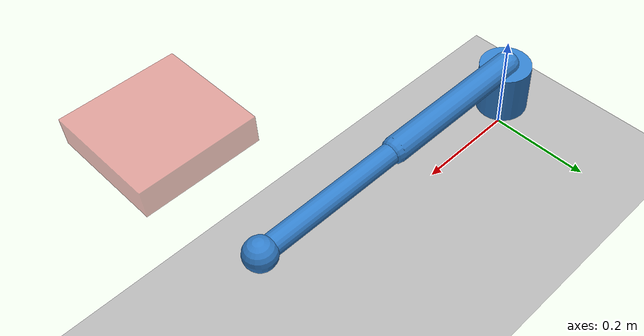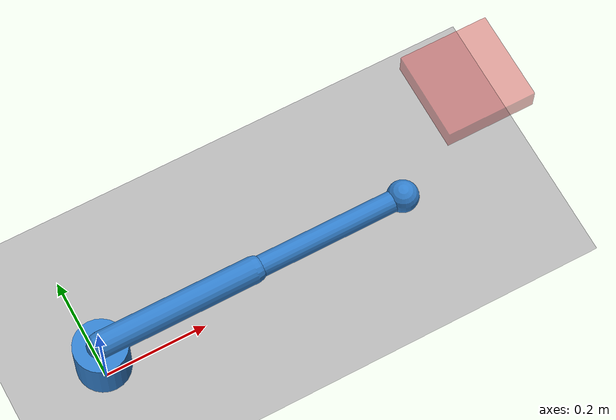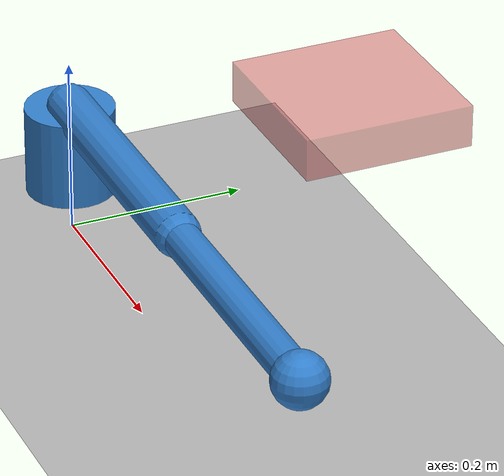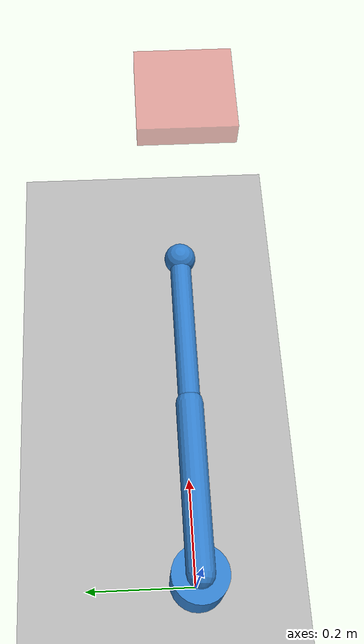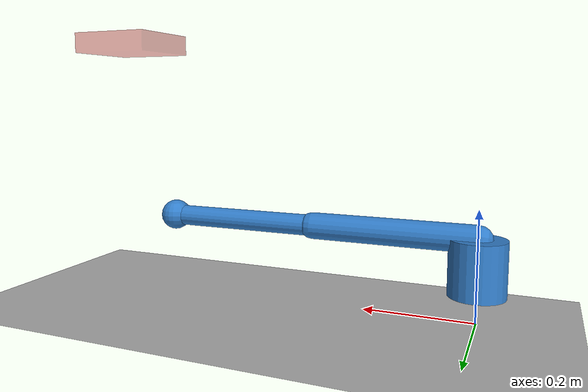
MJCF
<mujoco model="two_dof_arm">
  <option gravity="0 0 -9.81" timestep="0.002" integrator="RK4"/>

  <visual>
    <headlight ambient="0.4 0.4 0.4" diffuse="0.8 0.8 0.8"/>
  </visual>

  <asset>
    <material name="robot_mat"  rgba="0.2 0.5 0.8 1"/>
    <material name="pad_mat"    rgba="0.8 0.3 0.3 0.5"/>
    <material name="floor_mat"  rgba="0.7 0.7 0.7 1"/>
  </asset>

  <worldbody>
    <!-- Floor -->
    <geom name="floor" type="plane" size="2 2 0.1"
          material="floor_mat" condim="3"/>

    <!-- Compliant contact pad (represents human body region — arm) -->
    <body name="contact_pad" pos="0.7 0 0.5">
      <geom name="pad" type="box" size="0.08 0.08 0.02"
            material="pad_mat" solimp="0.99 0.999 0.001" solref="0.01 1"
            condim="3" mass="0"/>
    </body>

    <!-- Robot base -->
    <body name="base" pos="0 0 0.1">
      <geom name="base_geom" type="cylinder" size="0.05 0.05"
            material="robot_mat" mass="2"/>

      <!-- Shoulder joint -->
      <body name="upper_arm" pos="0 0 0.05">
        <joint name="shoulder" type="hinge" axis="0 1 0"
               range="-1.57 1.57" damping="2.0"/>
        <geom name="upper_arm_geom" type="capsule"
              fromto="0 0 0  0.3 0 0" size="0.025"
              material="robot_mat" mass="1"/>

        <!-- Elbow joint -->
        <body name="forearm" pos="0.3 0 0">
          <joint name="elbow" type="hinge" axis="0 1 0"
                 range="-2.5 0.0" damping="1.5"/>
          <geom name="forearm_geom" type="capsule"
                fromto="0 0 0  0.3 0 0" size="0.02"
                material="robot_mat" mass="0.7"/>

          <!-- End-effector -->
          <body name="end_effector" pos="0.3 0 0">
            <geom name="end_effector" type="sphere" size="0.03"
                  material="robot_mat" mass="0.2"
                  solimp="0.99 0.999 0.001" solref="0.02 1"/>
            <site name="ee_site" size="0.01"/>
          </body>
        </body>
      </body>
    </body>
  </worldbody>

  <actuator>
    <motor name="shoulder_act" joint="shoulder" gear="80"  ctrllimited="true" ctrlrange="-40 40"/>
    <motor name="elbow_act"    joint="elbow"    gear="60"  ctrllimited="true" ctrlrange="-30 30"/>
  </actuator>
</mujoco>
